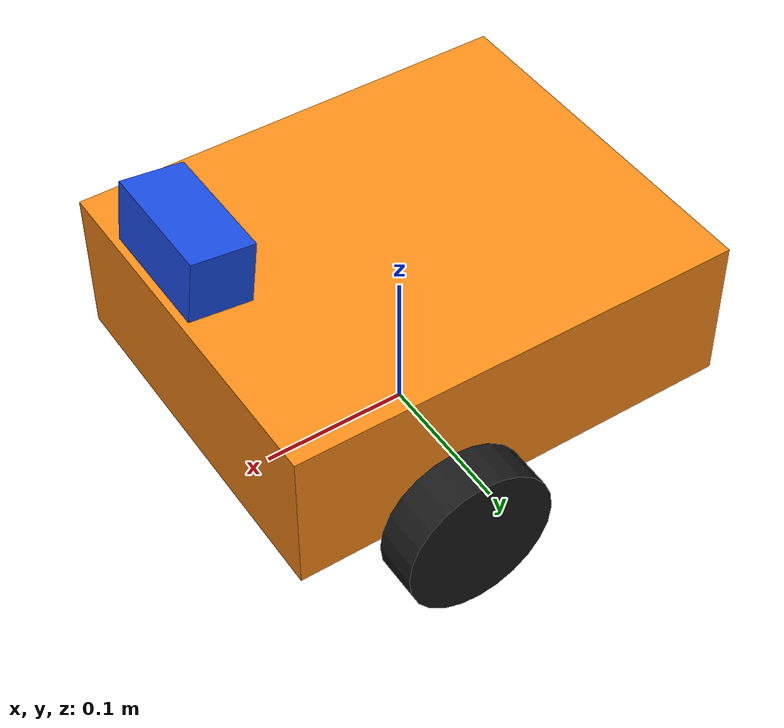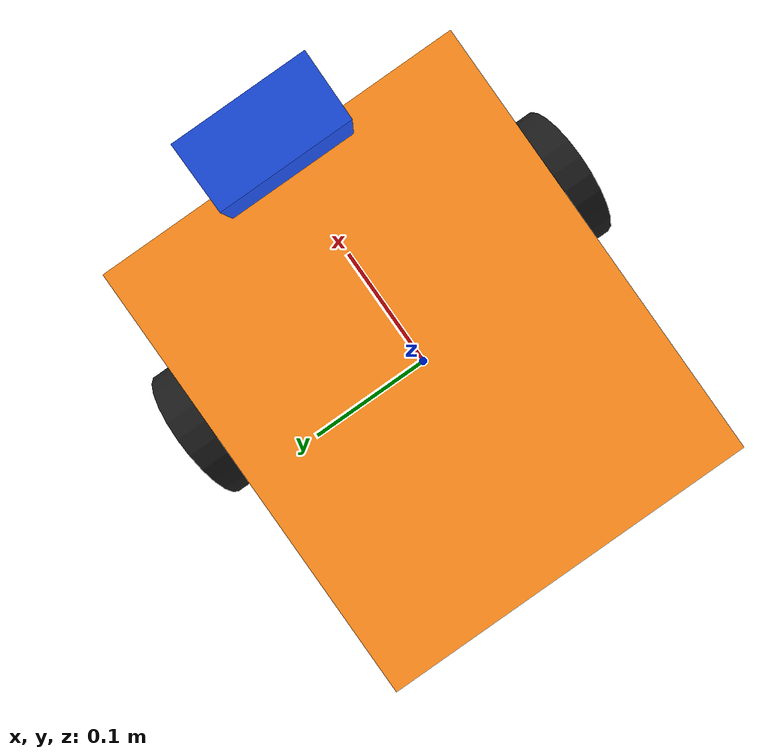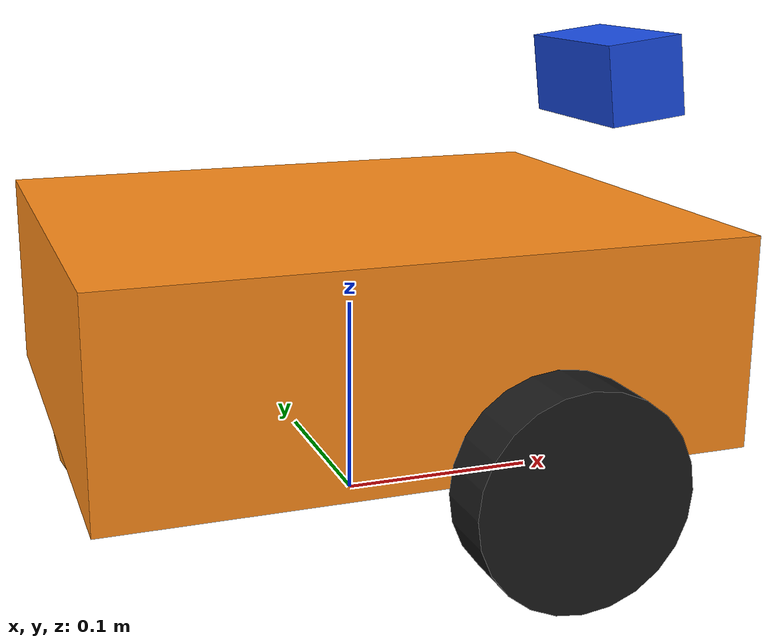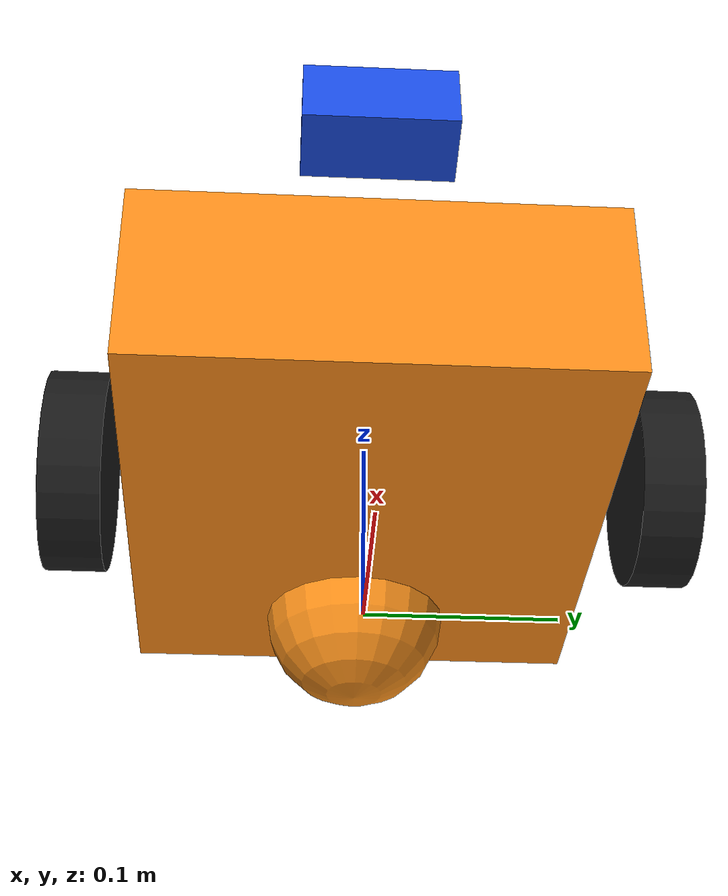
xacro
<?xml version="1.0"?>
<!-- Differential-drive rover with a forward RGB camera (Gazebo Classic 11 / ROS 2 Humble) -->
<robot name="yolo_rover" xmlns:xacro="http://www.ros.org/wiki/xacro">

  <xacro:property name="wheel_r" value="0.05"/>
  <xacro:property name="wheel_w" value="0.03"/>
  <xacro:property name="wheel_y" value="0.145"/>
  <xacro:property name="wheel_x" value="0.05"/>

  <xacro:macro name="box_inertia" params="m x y z">
    <inertia ixx="${m*(y*y+z*z)/12}" ixy="0" ixz="0" iyy="${m*(x*x+z*z)/12}" iyz="0" izz="${m*(x*x+y*y)/12}"/>
  </xacro:macro>

  <!-- base_footprint sits on the ground, base_link at wheel-axle height -->
  <link name="base_footprint"/>
  <joint name="footprint_joint" type="fixed">
    <parent link="base_footprint"/>
    <child link="base_link"/>
    <origin xyz="0 0 ${wheel_r}"/>
  </joint>

  <link name="base_link">
    <visual>
      <origin xyz="0 0 0.05"/>
      <geometry><box size="0.30 0.25 0.10"/></geometry>
      <material name="orange"><color rgba="1.0 0.55 0.1 1"/></material>
    </visual>
    <collision>
      <origin xyz="0 0 0.05"/>
      <geometry><box size="0.30 0.25 0.10"/></geometry>
    </collision>
    <!-- passive caster (frictionless sphere) -->
    <visual>
      <origin xyz="-0.10 0 0"/>
      <geometry><sphere radius="${wheel_r}"/></geometry>
    </visual>
    <collision name="caster">
      <origin xyz="-0.10 0 0"/>
      <geometry><sphere radius="${wheel_r - 0.001}"/></geometry>
    </collision>
    <inertial>
      <origin xyz="-0.02 0 0.04"/>
      <mass value="2.0"/>
      <xacro:box_inertia m="2.0" x="0.30" y="0.25" z="0.10"/>
    </inertial>
  </link>

  <xacro:macro name="wheel" params="side sign">
    <link name="${side}_wheel">
      <visual>
        <origin rpy="1.5708 0 0"/>
        <geometry><cylinder radius="${wheel_r}" length="${wheel_w}"/></geometry>
        <material name="black"><color rgba="0.1 0.1 0.1 1"/></material>
      </visual>
      <collision>
        <origin rpy="1.5708 0 0"/>
        <geometry><cylinder radius="${wheel_r}" length="${wheel_w}"/></geometry>
      </collision>
      <inertial>
        <mass value="0.2"/>
        <inertia ixx="0.00014" ixy="0" ixz="0" iyy="0.00025" iyz="0" izz="0.00014"/>
      </inertial>
    </link>
    <joint name="${side}_wheel_joint" type="continuous">
      <parent link="base_link"/>
      <child link="${side}_wheel"/>
      <origin xyz="${wheel_x} ${sign*wheel_y} 0"/>
      <axis xyz="0 1 0"/>
    </joint>
    <gazebo reference="${side}_wheel">
      <mu1>1.0</mu1>
      <mu2>1.0</mu2>
      <kp>1e6</kp>
      <kd>100</kd>
      <material>Gazebo/Black</material>
    </gazebo>
  </xacro:macro>

  <xacro:wheel side="left" sign="1"/>
  <xacro:wheel side="right" sign="-1"/>

  <gazebo reference="base_link">
    <material>Gazebo/Orange</material>
    <mu1>0.0</mu1>
    <mu2>0.0</mu2>
  </gazebo>

  <!-- camera mast -->
  <link name="camera_link">
    <visual>
      <geometry><box size="0.04 0.08 0.04"/></geometry>
      <material name="blue"><color rgba="0.1 0.3 0.9 1"/></material>
    </visual>
    <inertial>
      <mass value="0.05"/>
      <inertia ixx="1e-5" ixy="0" ixz="0" iyy="1e-5" iyz="0" izz="1e-5"/>
    </inertial>
  </link>
  <joint name="camera_joint" type="fixed">
    <parent link="base_link"/>
    <child link="camera_link"/>
    <!-- slightly tilted upward so that tall objects stay in view when close -->
    <origin xyz="0.14 0 0.16" rpy="0 -0.12 0"/>
  </joint>
  <link name="camera_optical_link"/>
  <joint name="camera_optical_joint" type="fixed">
    <parent link="camera_link"/>
    <child link="camera_optical_link"/>
    <origin rpy="-1.5708 0 -1.5708"/>
  </joint>

  <gazebo reference="camera_link">
    <material>Gazebo/Blue</material>
    <sensor type="camera" name="front_camera">
      <always_on>true</always_on>
      <update_rate>10</update_rate>
      <visualize>false</visualize>
      <camera>
        <horizontal_fov>1.3</horizontal_fov>
        <image>
          <width>640</width>
          <height>480</height>
          <format>R8G8B8</format>
        </image>
        <clip><near>0.05</near><far>40</far></clip>
      </camera>
      <plugin name="front_camera_plugin" filename="libgazebo_ros_camera.so">
        <camera_name>camera</camera_name>
        <frame_name>camera_optical_link</frame_name>
      </plugin>
    </sensor>
  </gazebo>

  <!-- differential drive: subscribes /cmd_vel, publishes /odom -->
  <gazebo>
    <plugin name="diff_drive" filename="libgazebo_ros_diff_drive.so">
      <update_rate>50</update_rate>
      <left_joint>left_wheel_joint</left_joint>
      <right_joint>right_wheel_joint</right_joint>
      <wheel_separation>${2*wheel_y}</wheel_separation>
      <wheel_diameter>${2*wheel_r}</wheel_diameter>
      <max_wheel_torque>5</max_wheel_torque>
      <max_wheel_acceleration>3.0</max_wheel_acceleration>
      <publish_odom>true</publish_odom>
      <publish_odom_tf>true</publish_odom_tf>
      <publish_wheel_tf>false</publish_wheel_tf>
      <odometry_frame>odom</odometry_frame>
      <robot_base_frame>base_footprint</robot_base_frame>
    </plugin>
  </gazebo>
</robot>
